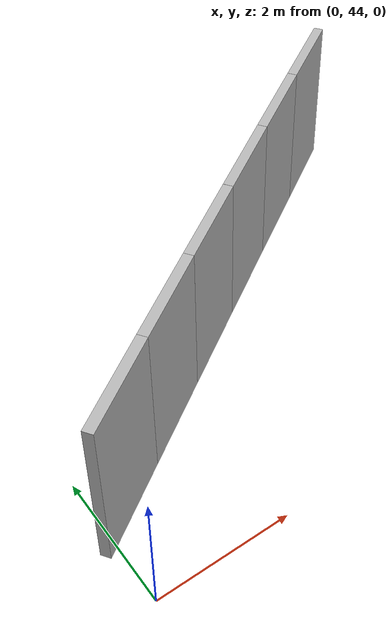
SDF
<?xml version="1.0" ?>
<sdf version="1.6">
  <model name="sps_1343">
    <pose frame="">0 0 0 0 -0 0</pose>
    <static>1</static>
    <self_collide>0</self_collide>
    <allow_auto_disable>0</allow_auto_disable>
    <link name="Wall3236">
      <kinematic>0</kinematic>
      <gravity>1</gravity>
      <self_collide>0</self_collide>
      <collision name="collision">
        <geometry>
          <box>
            <size>1.49645 0.15 2.5</size>
          </box>
        </geometry>
        <pose frame="">0 0 0 0 -0 0</pose>
      </collision>
      <visual name="visual">
        <geometry>
          <box>
            <size>1.49645 0.15 2.5</size>
          </box>
        </geometry>
        <pose frame="">0 0 0 0 -0 0</pose>
        <cast_shadows>1</cast_shadows>
        <transparency>0.0</transparency>
      </visual>
      <pose frame="">6.63326 49.4698 1.25 0 0 -2.55124</pose>
    </link>
    <link name="Wall3237">
      <kinematic>0</kinematic>
      <gravity>1</gravity>
      <self_collide>0</self_collide>
      <collision name="collision">
        <geometry>
          <box>
            <size>1.49661 0.15 2.5</size>
          </box>
        </geometry>
        <pose frame="">0 0 0 0 -0 0</pose>
      </collision>
      <visual name="visual">
        <geometry>
          <box>
            <size>1.49661 0.15 2.5</size>
          </box>
        </geometry>
        <pose frame="">0 0 0 0 -0 0</pose>
        <cast_shadows>1</cast_shadows>
        <transparency>0.0</transparency>
      </visual>
      <pose frame="">5.39068 48.6358 1.25 0 0 -2.54969</pose>
    </link>
    <link name="Wall3238">
      <kinematic>0</kinematic>
      <gravity>1</gravity>
      <self_collide>0</self_collide>
      <collision name="collision">
        <geometry>
          <box>
            <size>1.49654 0.15 2.5</size>
          </box>
        </geometry>
        <pose frame="">0 0 0 0 -0 0</pose>
      </collision>
      <visual name="visual">
        <geometry>
          <box>
            <size>1.49654 0.15 2.5</size>
          </box>
        </geometry>
        <pose frame="">0 0 0 0 -0 0</pose>
        <cast_shadows>1</cast_shadows>
        <transparency>0.0</transparency>
      </visual>
      <pose frame="">4.14938 47.7998 1.25 0 0 -2.54808</pose>
    </link>
    <link name="Wall3239">
      <kinematic>0</kinematic>
      <gravity>1</gravity>
      <self_collide>0</self_collide>
      <collision name="collision">
        <geometry>
          <box>
            <size>1.4965 0.15 2.5</size>
          </box>
        </geometry>
        <pose frame="">0 0 0 0 -0 0</pose>
      </collision>
      <visual name="visual">
        <geometry>
          <box>
            <size>1.4965 0.15 2.5</size>
          </box>
        </geometry>
        <pose frame="">0 0 0 0 -0 0</pose>
        <cast_shadows>1</cast_shadows>
        <transparency>0.0</transparency>
      </visual>
      <pose frame="">2.90948 46.9618 1.25 0 0 -2.54644</pose>
    </link>
    <link name="Wall3240">
      <kinematic>0</kinematic>
      <gravity>1</gravity>
      <self_collide>0</self_collide>
      <collision name="collision">
        <geometry>
          <box>
            <size>1.49646 0.15 2.5</size>
          </box>
        </geometry>
        <pose frame="">0 0 0 0 -0 0</pose>
      </collision>
      <visual name="visual">
        <geometry>
          <box>
            <size>1.49646 0.15 2.5</size>
          </box>
        </geometry>
        <pose frame="">0 0 0 0 -0 0</pose>
        <cast_shadows>1</cast_shadows>
        <transparency>0.0</transparency>
      </visual>
      <pose frame="">1.67086 46.122 1.25 0 0 -2.54509</pose>
    </link>
    <link name="Wall3241">
      <kinematic>0</kinematic>
      <gravity>1</gravity>
      <self_collide>0</self_collide>
      <collision name="collision">
        <geometry>
          <box>
            <size>1.49646 0.15 2.5</size>
          </box>
        </geometry>
        <pose frame="">0 0 0 0 -0 0</pose>
      </collision>
      <visual name="visual">
        <geometry>
          <box>
            <size>1.49646 0.15 2.5</size>
          </box>
        </geometry>
        <pose frame="">0 0 0 0 -0 0</pose>
        <cast_shadows>1</cast_shadows>
        <transparency>0.0</transparency>
      </visual>
      <pose frame="">0.433555 45.2803 1.25 0 0 -2.54336</pose>
    </link>
  </model>
</sdf>
